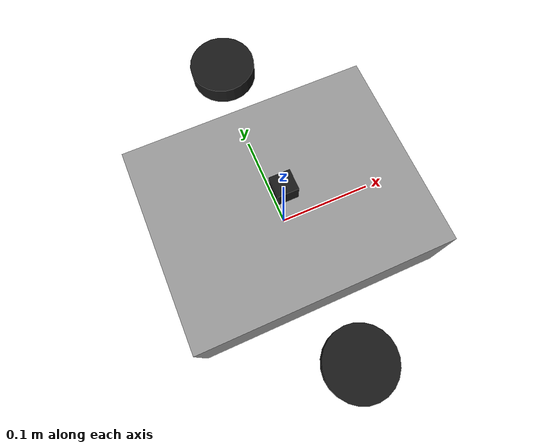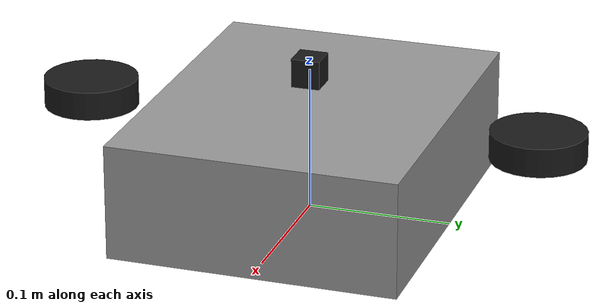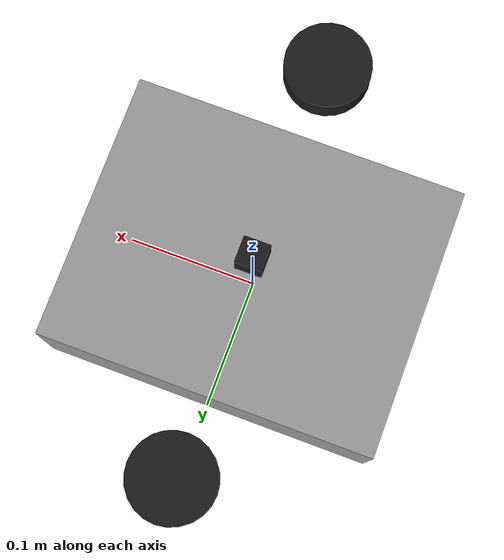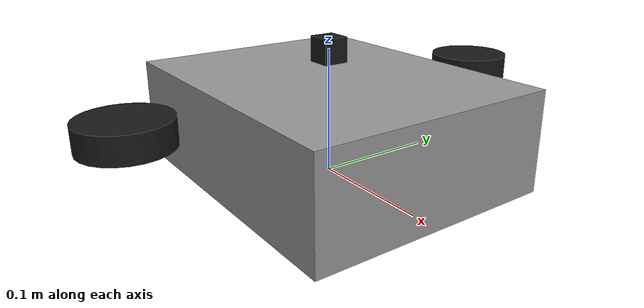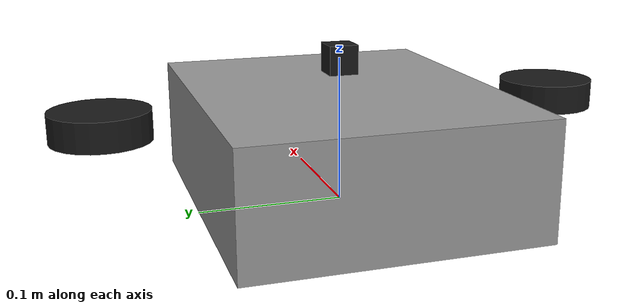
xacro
<?xml version="1.0"?>
<robot name="boxbot" xmlns:xacro="http://www.ros.org/wiki/xacro">
  <xacro:property name="wheel_radius" value="0.033"/>
  <xacro:property name="wheel_separation" value="0.16"/>
  <xacro:property name="base_size_x" value="0.25"/>
  <xacro:property name="base_size_y" value="0.20"/>
  <xacro:property name="base_size_z" value="0.08"/>

  <material name="grey"><color rgba="0.6 0.6 0.6 1.0"/></material>
  <material name="black"><color rgba="0.1 0.1 0.1 1.0"/></material>

  <link name="base_link">
    <visual>
      <origin xyz="0 0 ${base_size_z/2}" rpy="0 0 0"/>
      <geometry><box size="${base_size_x} ${base_size_y} ${base_size_z}"/></geometry>
      <material name="grey"/>
    </visual>
    <collision>
      <origin xyz="0 0 ${base_size_z/2}" rpy="0 0 0"/>
      <geometry><box size="${base_size_x} ${base_size_y} ${base_size_z}"/></geometry>
    </collision>
    <inertial>
      <origin xyz="0 0 ${base_size_z/2}" rpy="0 0 0"/>
      <mass value="2.0"/>
      <inertia ixx="0.02" ixy="0" ixz="0" iyy="0.02" iyz="0" izz="0.03"/>
    </inertial>
  </link>

  <link name="imu_link">
    <visual>
      <origin xyz="0 0 ${base_size_z + 0.02}" rpy="0 0 0"/>
      <geometry><box size="0.02 0.02 0.02"/></geometry>
      <material name="black"/>
    </visual>
  </link>
  <joint name="imu_joint" type="fixed">
    <parent link="base_link"/>
    <child link="imu_link"/>
  </joint>

  <!-- Wheels (rotate about y-axis) -->
  <link name="wheel_left_link">
    <visual>
      <origin xyz="0 ${wheel_separation/2} ${wheel_radius}" rpy="0 0 0"/>
      <geometry><cylinder radius="${wheel_radius}" length="0.02"/></geometry>
      <material name="black"/>
    </visual>
  </link>
  <joint name="wheel_left_joint" type="continuous">
    <parent link="base_link"/>
    <child link="wheel_left_link"/>
    <origin xyz="0 ${wheel_separation/2} ${wheel_radius}" rpy="0 0 0"/>
    <axis xyz="0 1 0"/>
  </joint>

  <link name="wheel_right_link">
    <visual>
      <origin xyz="0 ${-wheel_separation/2} ${wheel_radius}" rpy="0 0 0"/>
      <geometry><cylinder radius="${wheel_radius}" length="0.02"/></geometry>
      <material name="black"/>
    </visual>
  </link>
  <joint name="wheel_right_joint" type="continuous">
    <parent link="base_link"/>
    <child link="wheel_right_link"/>
    <origin xyz="0 ${-wheel_separation/2} ${wheel_radius}" rpy="0 0 0"/>
    <axis xyz="0 1 0"/>
  </joint>
</robot>
